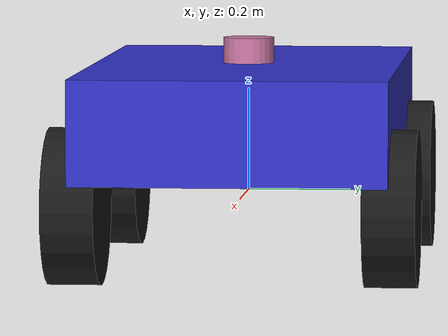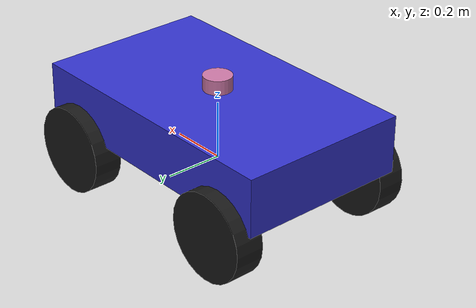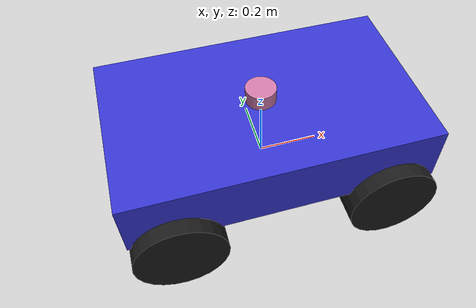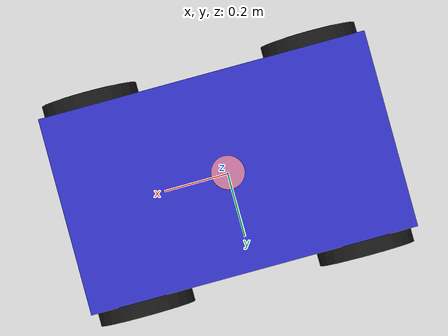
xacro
<?xml version="1.0"?>
<robot xmlns:xacro="http://www.ros.org/wiki/xacro" name="vehicle">

  <xacro:macro name="wheel_inertia" params="m r h">
    <inertial>
      <mass value="${m}"/>
      <inertia ixx="${(1/12)*m*(3*r*r + h*h)}" ixy="0" ixz="0"
               iyy="${(1/12)*m*(3*r*r + h*h)}" iyz="0"
               izz="${(1/2)*m*r*r}" />
    </inertial>
  </xacro:macro>

  <link name="base_footprint"/>

  <joint name="base_joint" type="fixed">
    <parent link="base_footprint"/>
    <child link="base_link"/>
    <origin xyz="0 0 0.151" rpy="0 0 0"/>
  </joint>

  <link name="base_link">
    <visual>
      <geometry><box size="1.0 0.6 0.2"/></geometry>
      <material name="blue"><color rgba="0.2 0.2 0.8 1.0"/></material>
    </visual>
    <collision><geometry><box size="1.0 0.6 0.2"/></geometry></collision>
    <inertial>
      <mass value="15.0"/>
      <origin xyz="0 0 0"/>
      <inertia ixx="${(1/12)*15.0*(0.6*0.6 + 0.2*0.2)}" ixy="0" ixz="0"
               iyy="${(1/12)*15.0*(1.0*1.0 + 0.2*0.2)}" iyz="0"
               izz="${(1/12)*15.0*(1.0*1.0 + 0.6*0.6)}" />
    </inertial>
  </link>

  <xacro:macro name="wheel" params="name x y">
    <link name="${name}_wheel">
      <visual>
        <origin rpy="1.5708 0 0" xyz="0 0 0"/>
        <geometry><cylinder length="0.1" radius="0.15"/></geometry>
        <material name="black"><color rgba="0.1 0.1 0.1 1.0"/></material>
      </visual>
      <collision>
        <origin rpy="1.5708 0 0" xyz="0 0 0"/>
        <geometry><cylinder length="0.1" radius="0.15"/></geometry>
      </collision>
      <xacro:wheel_inertia m="1.0" r="0.15" h="0.1"/>
    </link>

    <joint name="${name}_wheel_joint" type="continuous">
      <parent link="base_link"/>
      <child link="${name}_wheel"/>
      <origin xyz="${x} ${y} -0.151"/>
      <axis xyz="0 1 0"/>
    </joint>

    <gazebo reference="${name}_wheel">
      <material>Gazebo/Black</material>
      <mu1>1.0</mu1>
      <mu2>1.0</mu2>
      <kp>1000000.0</kp>
      <kd>100.0</kd>
      <minDepth>0.001</minDepth>
    </gazebo>
  </xacro:macro>

  <xacro:wheel name="front_left"  x="0.35"  y="0.3"/>
  <xacro:wheel name="front_right" x="0.35"  y="-0.3"/>
  <xacro:wheel name="rear_left"   x="-0.35" y="0.3"/>
  <xacro:wheel name="rear_right"  x="-0.35" y="-0.3"/>

  <link name="lidar_link">
    <visual><geometry><cylinder radius="0.05" length="0.05"/></geometry></visual>
    <collision><geometry><cylinder radius="0.05" length="0.05"/></geometry></collision>
    <inertial>
      <mass value="0.1"/><origin xyz="0 0 0"/>
      <inertia ixx="0.0001" iyy="0.0001" izz="0.0001" ixy="0" ixz="0" iyz="0"/>
    </inertial>
  </link>

  <joint name="lidar_joint" type="fixed">
    <parent link="base_link"/><child link="lidar_link"/><origin xyz="0 0 0.125"/>
  </joint>

  <gazebo reference="base_link"><material>Gazebo/Blue</material></gazebo>

  <gazebo reference="lidar_link">
    <sensor type="ray" name="lidar">
      <update_rate>10</update_rate>
      <visualize>true</visualize>
      <ray>
        <scan><horizontal><samples>360</samples><min_angle>-3.14159</min_angle><max_angle>3.14159</max_angle></horizontal></scan>
        <range><min>0.15</min><max>12.0</max></range>
      </ray>
      <plugin name="gazebo_ros_laser" filename="libgazebo_ros_ray_sensor.so">
        <ros><remapping>~/out:=scan</remapping></ros>
        <output_type>sensor_msgs/LaserScan</output_type>
        <frame_name>lidar_link</frame_name>
      </plugin>
    </sensor>
  </gazebo>

  <gazebo>
    <plugin name="vehicle_joint_state" filename="libgazebo_ros_joint_state_publisher.so">
      <ros><remapping>~/out:=joint_states</remapping></ros>
      <update_rate>30</update_rate>
      <joint_name>front_left_wheel_joint</joint_name>
      <joint_name>front_right_wheel_joint</joint_name>
      <joint_name>rear_left_wheel_joint</joint_name>
      <joint_name>rear_right_wheel_joint</joint_name>
    </plugin>
  </gazebo>

  <gazebo>
    <plugin name="mecanum_drive" filename="libgazebo_ros_planar_move.so">
      <ros><remapping>odom:=odom</remapping></ros>
      <update_rate>100</update_rate>
      <publish_odom>true</publish_odom>
      <publish_odom_tf>true</publish_odom_tf>
      <odometry_frame>odom</odometry_frame>
      <robot_base_frame>base_footprint</robot_base_frame>
      <publish_wheel_tf>false</publish_wheel_tf>
    </plugin>
  </gazebo>

</robot>
